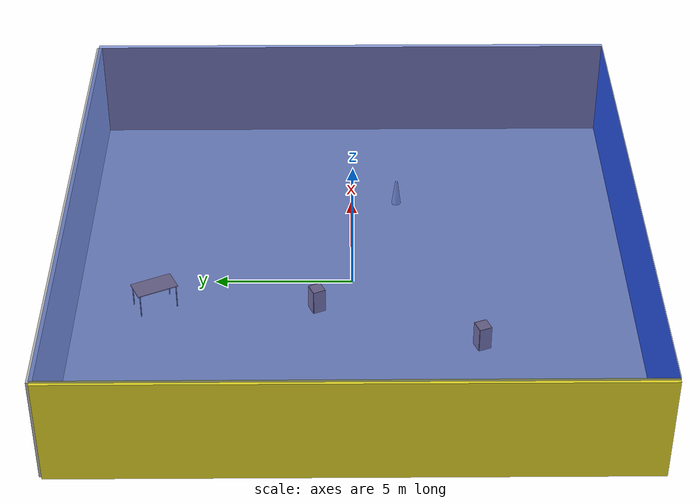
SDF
<sdf version="1.4">
 <world name="default">
  <physics type="ode">
   <max_step_size>0.001</max_step_size>
   <real_time_factor>1</real_time_factor>
   <real_time_update_rate>1000</real_time_update_rate>
   <gravity>0 0 -9.8</gravity>
  </physics>
  <scene><ambient>0.4 0.4 0.4 1</ambient><background>0.7 0.7 0.7 1</background><shadows>1</shadows></scene>
  <model name="Surrounding">
   <static>1</static>
   <link name="Ceiling">
    <collision name="Ceiling_Collision"><geometry><box><size>20 20 0.1</size></box></geometry></collision>
    <visual name="Ceiling_Visual">
     <geometry><box><size>20 20 0.1</size></box></geometry>
     <material>
      <script><uri>file://media/materials/scripts/gazebo.material</uri><name>Gazebo/BlueTransparent</name></script>
     </material>
    </visual>
    <pose>0 0 4.05 0 0 0</pose>
   </link>
   <link name="Wall_South">
    <collision name="Wall_South_Collision">
     <geometry><box><size>20 0 4</size></box></geometry>
     <pose>0 0 2 0 -0 0</pose>
    </collision>
    <visual name="Wall_South_Visual">
     <pose>0 0 2 0 -0 0</pose>
     <geometry><box><size>20 0 4</size></box></geometry>
     <material>
      <script><uri>file://media/materials/scripts/gazebo.material</uri><name>Gazebo/Blue</name></script>
     </material>
    </visual>
    <velocity_decay><linear>0</linear><angular>0</angular></velocity_decay>
    <pose>0 -10 0 0 -0 0</pose>
   </link>
   <link name="Wall_East">
    <collision name="Wall_21_Collision">
     <geometry><box><size>20 0 4</size></box></geometry>
     <pose>0 0 2 0 -0 0</pose>
    </collision>
    <visual name="Wall_21_Visual">
     <pose>0 0 2 0 -0 0</pose>
     <geometry><box><size>20 0 4</size></box></geometry>
     <material>
      <script><uri>file://media/materials/scripts/gazebo.material</uri><name>Gazebo/Wood</name></script>
     </material>
    </visual>
    <velocity_decay><linear>0</linear><angular>0</angular></velocity_decay>
    <pose>10 0 0 0 -0 1.5708</pose>
   </link>
   <link name="Wall_North">
    <collision name="Wall_22_Collision">
     <geometry><box><size>20 0.2 4</size></box></geometry>
     <pose>0 0 2 0 -0 0</pose>
    </collision>
    <visual name="Wall_22_Visual">
     <pose>0 0 2 0 -0 0</pose>
     <geometry><box><size>20 0.2 4</size></box></geometry>
     <material>
      <script><uri>file://media/materials/scripts/gazebo.material</uri><name>Gazebo/JointAnchor</name></script>
     </material>
    </visual>
    <velocity_decay><linear>0</linear><angular>0</angular></velocity_decay>
    <pose>0 10 0 0 -0 0</pose>
   </link>
   <link name="Wall_West">
    <collision name="Wall_23_Collision">
     <geometry><box><size>20 0.2 4</size></box></geometry>
     <pose>0 0 2 0 -0 0</pose>
    </collision>
    <visual name="Wall_23_Visual">
     <pose>0 0 2 0 -0 0</pose>
     <geometry><box><size>20 0.2 4</size></box></geometry>
     <material>
      <script><uri>file://media/materials/scripts/gazebo.material</uri><name>Gazebo/YellowGlow</name></script>
     </material>
    </visual>
    <velocity_decay><linear>0</linear><angular>0</angular></velocity_decay>
    <pose>-10 0 0 0 0 -1.5708</pose>
   </link>
   <link name="Ground_link">
    <collision name="collision">
     <pose>0 0 .05 0 -0 0</pose>
     <geometry><box><size>20 20 0.1</size></box></geometry>
    </collision>
    <visual name="visual">
     <pose>0 0 .05 0 -0 0</pose>
     <geometry><box><size>20 20 0.1</size></box></geometry>
     <material>
      <script><uri>file://media/materials/scripts/gazebo.material</uri><name>Gazebo/JointAnchor</name></script>
     </material>
    </visual>
   </link>
   <static>1</static>
  </model>
  <spherical_coordinates>
   <surface_model>EARTH_WGS84</surface_model>
   <latitude_deg>0</latitude_deg>
   <longitude_deg>0</longitude_deg>
   <elevation>0</elevation>
   <heading_deg>0</heading_deg>
  </spherical_coordinates>
  <light name="lightball_0" type="diffuse">
   <diffuse>0.8 0.8 0.8 1</diffuse>
   <specular>0.2 0.2 0.2 1</specular>
   <attenuation>
    <range>100</range>
    <constant>0.7</constant>
    <linear>0.01</linear>
    <quadratic>0.001</quadratic>
   </attenuation>
   <direction>-0.5 0.1 -0.9</direction>
   <pose>-7.6924087369 5.49404297219 3.71271247039 0 0 0</pose>
  </light>
  <light name="lightball_1" type="diffuse">
   <diffuse>0.8 0.8 0.8 1</diffuse>
   <specular>0.2 0.2 0.2 1</specular>
   <attenuation>
    <range>100</range>
    <constant>0.7</constant>
    <linear>0.01</linear>
    <quadratic>0.001</quadratic>
   </attenuation>
   <direction>-0.5 0.1 -0.9</direction>
   <pose>0.758471388806 -4.56122074148 2.29536218512 0 0 0</pose>
  </light>
  <light name="lightball_2" type="diffuse">
   <diffuse>0.8 0.8 0.8 1</diffuse>
   <specular>0.2 0.2 0.2 1</specular>
   <attenuation>
    <range>100</range>
    <constant>0.7</constant>
    <linear>0.01</linear>
    <quadratic>0.001</quadratic>
   </attenuation>
   <direction>-0.5 0.1 -0.9</direction>
   <pose>4.13485272836 1.51942058555 0.601299392724 0 0 0</pose>
  </light>
  <light name="lightball_3" type="diffuse">
   <diffuse>0.8 0.8 0.8 1</diffuse>
   <specular>0.2 0.2 0.2 1</specular>
   <attenuation>
    <range>100</range>
    <constant>0.7</constant>
    <linear>0.01</linear>
    <quadratic>0.001</quadratic>
   </attenuation>
   <direction>-0.5 0.1 -0.9</direction>
   <pose>6.83338926415 0.103322053923 2.28292407751 0 0 0</pose>
  </light>
  <light name="lightball_4" type="diffuse">
   <diffuse>0.8 0.8 0.8 1</diffuse>
   <specular>0.2 0.2 0.2 1</specular>
   <attenuation>
    <range>100</range>
    <constant>0.7</constant>
    <linear>0.01</linear>
    <quadratic>0.001</quadratic>
   </attenuation>
   <direction>-0.5 0.1 -0.9</direction>
   <pose>3.56898444759 3.89967696673 3.69774966525 0 0 0</pose>
  </light>
  <light name="lightball_5" type="diffuse">
   <diffuse>0.8 0.8 0.8 1</diffuse>
   <specular>0.2 0.2 0.2 1</specular>
   <attenuation>
    <range>100</range>
    <constant>0.7</constant>
    <linear>0.01</linear>
    <quadratic>0.001</quadratic>
   </attenuation>
   <direction>-0.5 0.1 -0.9</direction>
   <pose>-2.75883842887 0.0975328960885 1.36371311406 0 0 0</pose>
  </light>
  <light name="lightball_6" type="diffuse">
   <diffuse>0.8 0.8 0.8 1</diffuse>
   <specular>0.2 0.2 0.2 1</specular>
   <attenuation>
    <range>100</range>
    <constant>0.7</constant>
    <linear>0.01</linear>
    <quadratic>0.001</quadratic>
   </attenuation>
   <direction>-0.5 0.1 -0.9</direction>
   <pose>-0.933571125063 -9.76889553393 0.858462508101 0 0 0</pose>
  </light>
  <light name="lightball_7" type="diffuse">
   <diffuse>0.8 0.8 0.8 1</diffuse>
   <specular>0.2 0.2 0.2 1</specular>
   <attenuation>
    <range>100</range>
    <constant>0.7</constant>
    <linear>0.01</linear>
    <quadratic>0.001</quadratic>
   </attenuation>
   <direction>-0.5 0.1 -0.9</direction>
   <pose>-5.62463918784 -3.44481055751 3.02741117435 0 0 0</pose>
  </light>
  <include><uri>model://cabinet</uri><pose>-3.74735531138 -4.48737084176 0 0 0 1.9426644579</pose></include>
  <include><uri>model://cabinet</uri><pose>-1.65478564928 1.28183955525 0 0 0 1.98598620903</pose></include>
  <include><uri>model://table</uri><pose>-1.44659909539 7.07429713719 0 0 0 2.0122983273</pose></include>
  <include>
   <uri>model://construction_cone</uri>
   <pose>4.79491351252 -1.72246890916 0 0 0 2.3542481115</pose>
  </include>
 </world>
</sdf>

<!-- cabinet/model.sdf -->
<sdf version="1.5">
  <model name="cabinet">
    <static>true</static>
    <link name="cabinet_bottom_plate">
      <inertial>
        <pose>0 0 -1 0 0 0</pose>
        <inertia>
          <ixx>2.050000</ixx>
          <ixy>0</ixy>
          <ixz>0</ixz>
          <iyy>2.050000</iyy>
          <iyz>0</iyz>
          <izz>2.050000</izz>
        </inertia>
        <mass>25.000000</mass>
      </inertial>
      <collision name="cabinet_bottom_plate_geom">
        <pose>0 0 0.010000 0 0 0</pose>
        <geometry>
          <box>
            <size>0.450000 0.450000 0.020000</size>
          </box>
        </geometry>
      </collision>
      <visual name="cabinet_bottom_plate_geom_visual">
        <pose>0 0 0.010000 0 0 0</pose>
        <geometry>
          <box>
            <size>0.450000 0.450000 0.020000</size>
          </box>
        </geometry>
        <material>
          <script>
            <uri>model://media/materials/scripts/gazebo.material</uri>
            <name>Gazebo/Wood</name>
          </script>
        </material>
      </visual>
      <collision name="cabinet_bottom_plate_geom_cabinet_back_plate">
        <pose>0.235000 0 0.510000 0 0 0</pose>
        <geometry>
          <box>
            <size>0.020000 0.450000 1.020000</size>
          </box>
        </geometry>
      </collision>
      <visual name="cabinet_bottom_plate_geom_cabinet_back_plate_visual">
        <pose>0.235000 0 0.510000 0 0 0</pose>
        <geometry>
          <box>
            <size>0.020000 0.450000 1.020000</size>
          </box>
        </geometry>
        <material>
          <script>
            <uri>model://media/materials/scripts/gazebo.material</uri>
            <name>Gazebo/Wood</name>
          </script>
        </material>
      </visual>
      <collision name="cabinet_bottom_plate_geom_cabinet_left_plate">
        <pose>0 0.235000 0.510000 0 0 0</pose>
        <geometry>
          <box>
            <size>0.450000 0.020000 1.020000</size>
          </box>
        </geometry>
      </collision>
      <visual name="cabinet_bottom_plate_geom_cabinet_left_plate_visual">
        <pose>0 0.235000 0.510000 0 0 0</pose>
        <geometry>
          <box>
            <size>0.450000 0.020000 1.020000</size>
          </box>
        </geometry>
        <material>
          <script>
            <uri>model://media/materials/scripts/gazebo.material</uri>
            <name>Gazebo/Wood</name>
          </script>
        </material>
      </visual>
      <collision name="cabinet_bottom_plate_geom_cabinet_middle_plate">
        <pose>0 0 0.510000 0 0 0</pose>
        <geometry>
          <box>
            <size>0.450000 0.450000 0.020000</size>
          </box>
        </geometry>
      </collision>
      <visual name="cabinet_bottom_plate_geom_cabinet_middle_plate_visual">
        <pose>0 0 0.510000 0 0 0</pose>
        <geometry>
          <box>
            <size>0.450000 0.450000 0.020000</size>
          </box>
        </geometry>
        <material>
          <script>
            <uri>model://media/materials/scripts/gazebo.material</uri>
            <name>Gazebo/Wood</name>
          </script>
        </material>
      </visual>
      <collision name="cabinet_bottom_plate_geom_cabinet_right_plate">
        <pose>0 -0.235000 0.510000 0 0 0</pose>
        <geometry>
          <box>
            <size>0.450000 0.020000 1.020000</size>
          </box>
        </geometry>
      </collision>
      <visual name="cabinet_bottom_plate_geom_cabinet_right_plate_visual">
        <pose>0 -0.235000 0.510000 0 0 0</pose>
        <geometry>
          <box>
            <size>0.450000 0.020000 1.020000</size>
          </box>
        </geometry>
        <material>
          <script>
            <uri>model://media/materials/scripts/gazebo.material</uri>
            <name>Gazebo/Wood</name>
          </script>
        </material>
      </visual>
      <collision name="cabinet_bottom_plate_geom_cabinet_top_plate">
        <pose>0 0 1.010000 0 0 0</pose>
        <geometry>
          <box>
            <size>0.450000 0.450000 0.020000</size>
          </box>
        </geometry>
      </collision>
      <visual name="cabinet_bottom_plate_geom_cabinet_top_plate_visual">
        <pose>0 0 1.010000 0 0 0</pose>
        <geometry>
          <box>
            <size>0.450000 0.450000 0.020000</size>
          </box>
        </geometry>
        <material>
          <script>
            <uri>model://media/materials/scripts/gazebo.material</uri>
            <name>Gazebo/Wood</name>
          </script>
        </material>
      </visual>
    </link>
  </model>
</sdf>

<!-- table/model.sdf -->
<sdf version="1.5">
  <model name="table">
    <static>true</static>
    <link name="link">
      <collision name="surface">
        <pose>0 0 1.0 0 0 0</pose>
        <geometry>
          <box>
            <size>1.5 0.8 0.03</size>
          </box>
        </geometry>
        <surface>
          <friction>
            <ode>
              <mu>0.6</mu>
              <mu2>0.6</mu2>
            </ode>
          </friction>
        </surface>
      </collision>
      <visual name="visual1">
        <pose>0 0 1.0 0 0 0</pose>
        <geometry>
          <box>
            <size>1.5 0.8 0.03</size>
          </box>
        </geometry>
        <material>
          <script>
            <uri>model://media/materials/scripts/gazebo.material</uri>
            <name>Gazebo/Wood</name>
          </script>
        </material>
      </visual>
      <collision name="front_left_leg">
        <pose>0.68 0.38 0.5 0 0 0</pose>
        <geometry>
          <cylinder>
            <radius>0.02</radius>
            <length>1.0</length>
          </cylinder>
        </geometry>
      </collision>
      <visual name="front_left_leg">
        <pose>0.68 0.38 0.5 0 0 0</pose>
        <geometry>
          <cylinder>
            <radius>0.02</radius>
            <length>1.0</length>
          </cylinder>
        </geometry>
        <material>
          <script>
            <uri>model://media/materials/scripts/gazebo.material</uri>
            <name>Gazebo/Grey</name>
          </script>
        </material>
      </visual>
      <collision name="front_right_leg">
        <pose>0.68 -0.38 0.5 0 0 0</pose>
        <geometry>
          <cylinder>
            <radius>0.02</radius>
            <length>1.0</length>
          </cylinder>
        </geometry>
      </collision>
      <visual name="front_right_leg">
        <pose>0.68 -0.38 0.5 0 0 0</pose>
        <geometry>
          <cylinder>
            <radius>0.02</radius>
            <length>1.0</length>
          </cylinder>
        </geometry>
        <material>
          <script>
            <uri>model://media/materials/scripts/gazebo.material</uri>
            <name>Gazebo/Grey</name>
          </script>
        </material>
      </visual>
      <collision name="back_right_leg">
        <pose>-0.68 -0.38 0.5 0 0 0</pose>
        <geometry>
          <cylinder>
            <radius>0.02</radius>
            <length>1.0</length>
          </cylinder>
        </geometry>
      </collision>
      <visual name="back_right_leg">
        <pose>-0.68 -0.38 0.5 0 0 0</pose>
        <geometry>
          <cylinder>
            <radius>0.02</radius>
            <length>1.0</length>
          </cylinder>
        </geometry>
        <material>
          <script>
            <uri>model://media/materials/scripts/gazebo.material</uri>
            <name>Gazebo/Grey</name>
          </script>
        </material>
      </visual>
      <collision name="back_left_leg">
        <pose>-0.68 0.38 0.5 0 0 0</pose>
        <geometry>
          <cylinder>
            <radius>0.02</radius>
            <length>1.0</length>
          </cylinder>
        </geometry>
      </collision>
      <visual name="back_left_leg">
        <pose>-0.68 0.38 0.5 0 0 0</pose>
        <geometry>
          <cylinder>
            <radius>0.02</radius>
            <length>1.0</length>
          </cylinder>
        </geometry>
        <material>
          <script>
            <uri>model://media/materials/scripts/gazebo.material</uri>
            <name>Gazebo/Grey</name>
          </script>
        </material>
      </visual>
    </link>
  </model>
</sdf>

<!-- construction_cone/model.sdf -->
<sdf version="1.5">
  <model name="Construction Cone">
    <link name="link">
      <collision name="collision">
        <geometry>
          <mesh>
            <scale>10 10 10</scale>
            <uri>file://isr-testbed/construction_cone/meshes/construction_cone.dae</uri>
          </mesh>
        </geometry>
      </collision>
      <visual name="visual">
        <geometry>
          <mesh>
            <scale>10 10 10</scale>
            <uri>file://isr-testbed/construction_cone/meshes/construction_cone.dae</uri>
          </mesh>
        </geometry>
      </visual>
    </link>
  </model>
</sdf>
